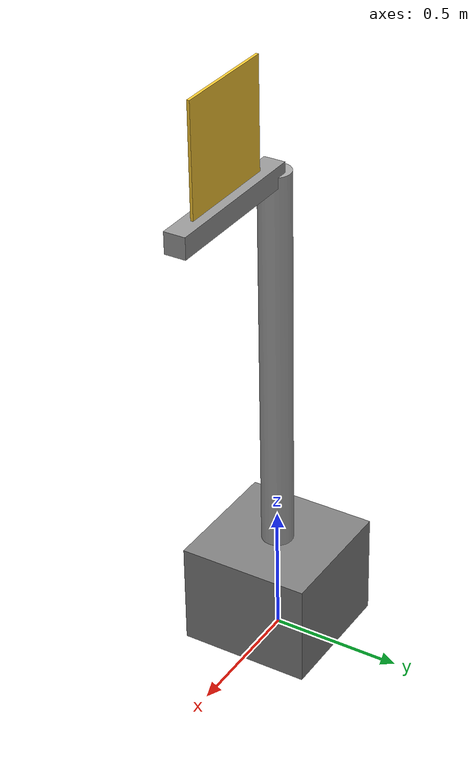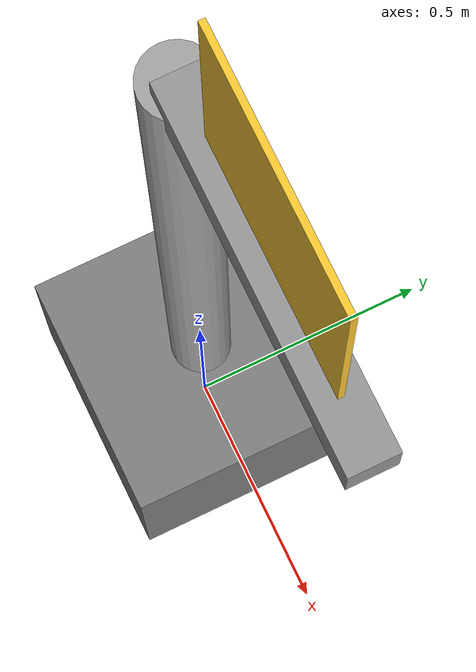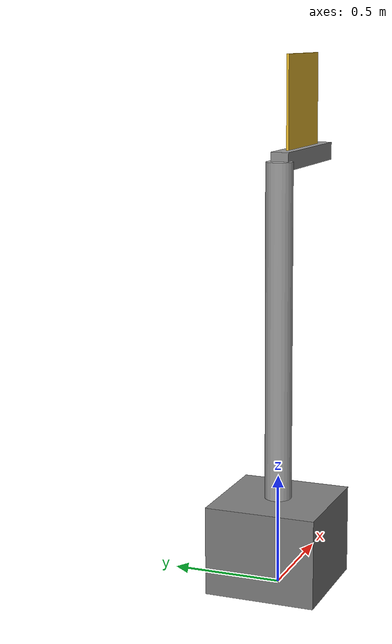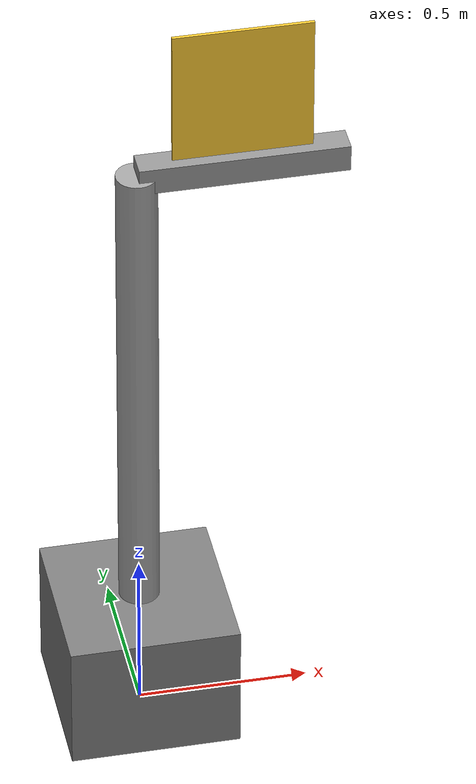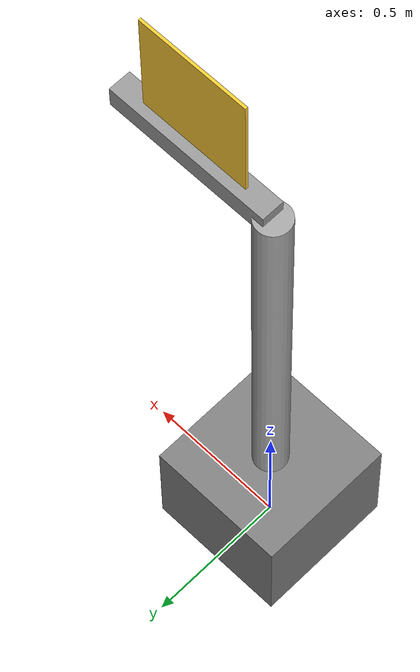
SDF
<?xml version="1.0"?>
<sdf version="1.7">
  <model name="bird_scare_banner">
    <!-- Foundation base that anchors the entire structure. -->
    <link name="foundation_base">
      <pose>0 0 0.20 0 0 0</pose>
      <inertial>
        <mass>12.0</mass>
        <inertia>
          <ixx>0.32</ixx>
          <iyy>0.32</iyy>
          <izz>0.24</izz>
          <ixy>0.0</ixy>
          <ixz>0.0</ixz>
          <iyz>0.0</iyz>
        </inertia>
      </inertial>

      <collision name="foundation_collision">
        <geometry>
          <box>
            <size>0.50 0.50 0.40</size>
          </box>
        </geometry>
      </collision>

      <visual name="foundation_visual">
        <geometry>
          <box>
            <size>0.50 0.50 0.40</size>
          </box>
        </geometry>
        <material>
          <ambient>0.40 0.40 0.40 1.0</ambient>
          <diffuse>0.50 0.50 0.50 1.0</diffuse>
          <specular>0.1 0.1 0.1 1.0</specular>
        </material>
      </visual>
    </link>

    <!-- Fixed central mast that extends vertically from the foundation. -->
    <link name="central_mast">
      <pose>0 0 1.15 0 0 0</pose>
      <inertial>
        <mass>4.0</mass>
        <inertia>
          <ixx>0.06</ixx>
          <iyy>0.06</iyy>
          <izz>0.01</izz>
          <ixy>0.0</ixy>
          <ixz>0.0</ixz>
          <iyz>0.0</iyz>
        </inertia>
      </inertial>

      <collision name="mast_collision">
        <geometry>
          <cylinder>
            <radius>0.06</radius>
            <length>1.50</length>
          </cylinder>
        </geometry>
      </collision>

      <visual name="mast_visual">
        <geometry>
          <cylinder>
            <radius>0.06</radius>
            <length>1.50</length>
          </cylinder>
        </geometry>
        <material>
          <ambient>0.55 0.55 0.55 1.0</ambient>
          <diffuse>0.65 0.65 0.65 1.0</diffuse>
          <specular>0.25 0.25 0.25 1.0</specular>
        </material>
      </visual>
    </link>

    <!-- Rotating arm assembly that extends horizontally from the mast. -->
    <link name="rotating_arm">
      <pose>0.30 0 1.90 0 0 0</pose>
      <inertial>
        <mass>2.5</mass>
        <inertia>
          <ixx>0.005</ixx>
          <iyy>0.12</iyy>
          <izz>0.12</izz>
          <ixy>0.0</ixy>
          <ixz>0.0</ixz>
          <iyz>0.0</iyz>
        </inertia>
      </inertial>

      <collision name="arm_collision">
        <geometry>
          <box>
            <size>0.60 0.08 0.08</size>
          </box>
        </geometry>
      </collision>

      <visual name="arm_visual">
        <geometry>
          <box>
            <size>0.60 0.08 0.08</size>
          </box>
        </geometry>
        <material>
          <ambient>0.50 0.50 0.50 1.0</ambient>
          <diffuse>0.60 0.60 0.60 1.0</diffuse>
          <specular>0.2 0.2 0.2 1.0</specular>
        </material>
      </visual>
    </link>

    <!-- Colored banner attached to the rotating arm for visual deterrent effect. -->
    <link name="banner_panel">
      <pose>0.30 0 2.10 0 0 0</pose>
      <inertial>
        <mass>1.5</mass>
        <inertia>
          <ixx>0.012</ixx>
          <iyy>0.008</iyy>
          <izz>0.008</izz>
          <ixy>0.0</ixy>
          <ixz>0.0</ixz>
          <iyz>0.0</iyz>
        </inertia>
      </inertial>

      <collision name="banner_collision">
        <geometry>
          <box>
            <size>0.40 0.01 0.50</size>
          </box>
        </geometry>
      </collision>

      <visual name="banner_visual">
        <geometry>
          <box>
            <size>0.40 0.01 0.50</size>
          </box>
        </geometry>
        <material>
          <ambient>0.9 0.7 0.1 1.0</ambient>
          <diffuse>1.0 0.8 0.2 1.0</diffuse>
          <specular>0.3 0.3 0.3 1.0</specular>
        </material>
      </visual>
    </link>

    <!-- Fixed joint anchoring the foundation to the central mast. -->
    <joint name="foundation_to_mast_joint" type="fixed">
      <parent>foundation_base</parent>
      <child>central_mast</child>
      <pose>0 0 -0.85 0 0 0</pose>
    </joint>

    <!-- Continuous revolute joint allowing the rotating arm to spin around the mast (Z-axis). -->
    <joint name="mast_to_arm_joint" type="revolute">
      <parent>central_mast</parent>
      <child>rotating_arm</child>
      <pose>0 0 -0.25 0 0 0</pose>
      <axis>
        <xyz>0 0 1</xyz>
        <limit>
          <lower>-3.14159265</lower>
          <upper>3.14159265</upper>
          <effort>10.0</effort>
          <velocity>2.0</velocity>
        </limit>
      </axis>
      <dynamics>
        <friction>0.5</friction>
        <damping>0.1</damping>
        <spring_reference>0</spring_reference>
        <spring_stiffness>0</spring_stiffness>
      </dynamics>
    </joint>

    <!-- Fixed joint attaching the banner to the rotating arm. -->
    <joint name="arm_to_banner_joint" type="fixed">
      <parent>rotating_arm</parent>
      <child>banner_panel</child>
      <pose>0 0 0.2 0 0 0</pose>
    </joint>
  </model>
</sdf>
